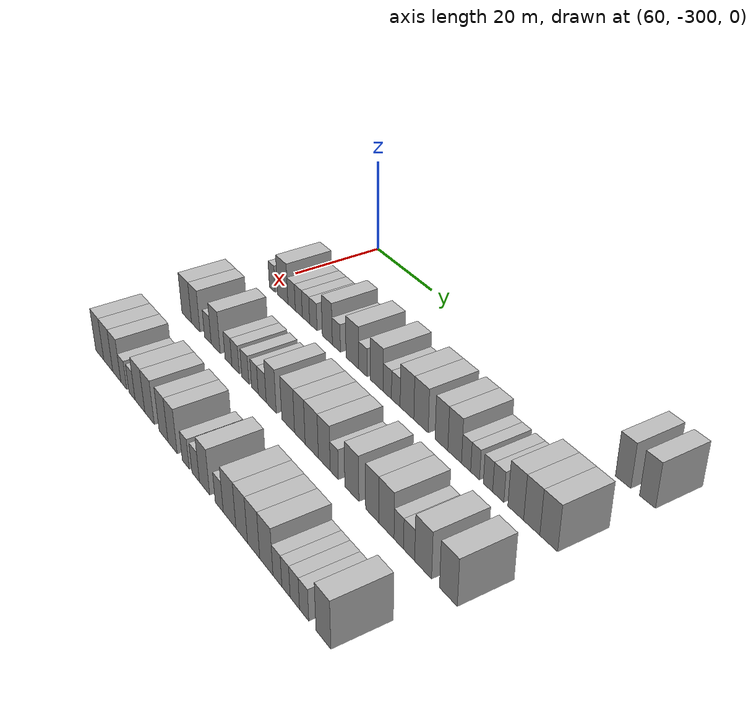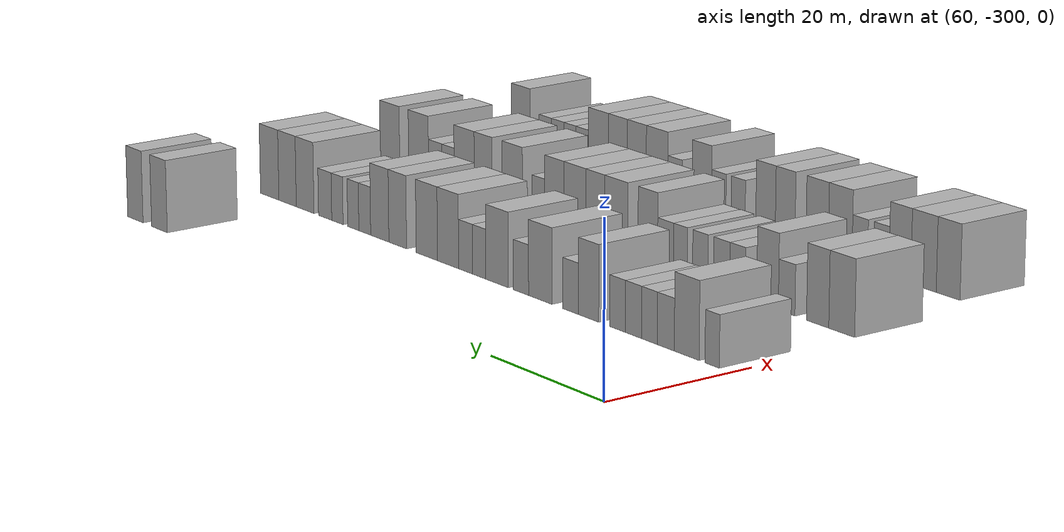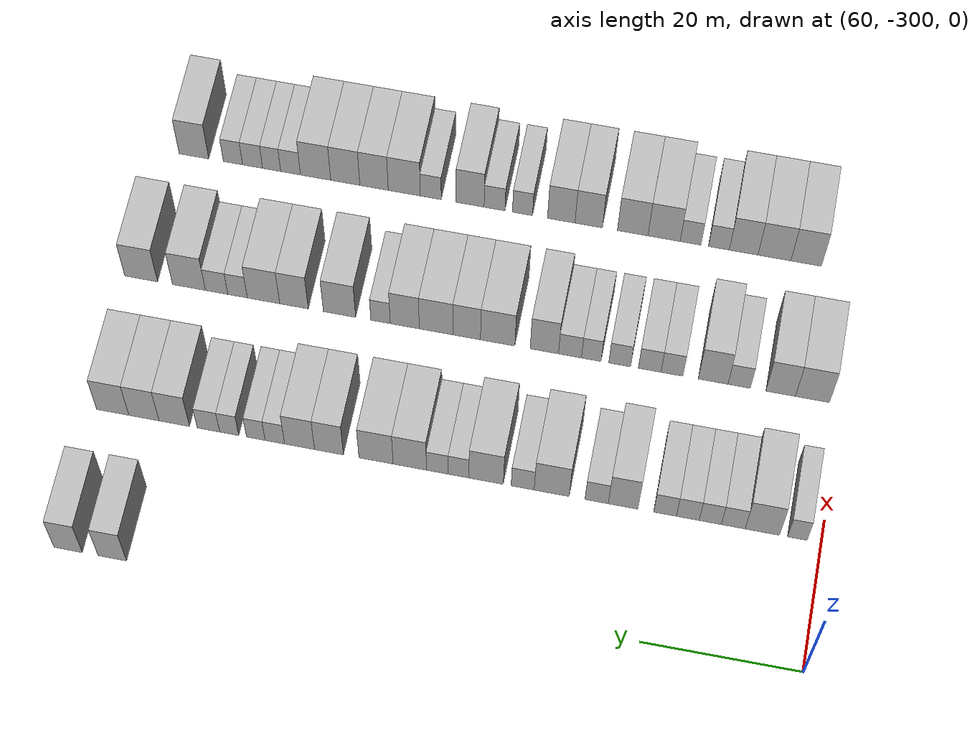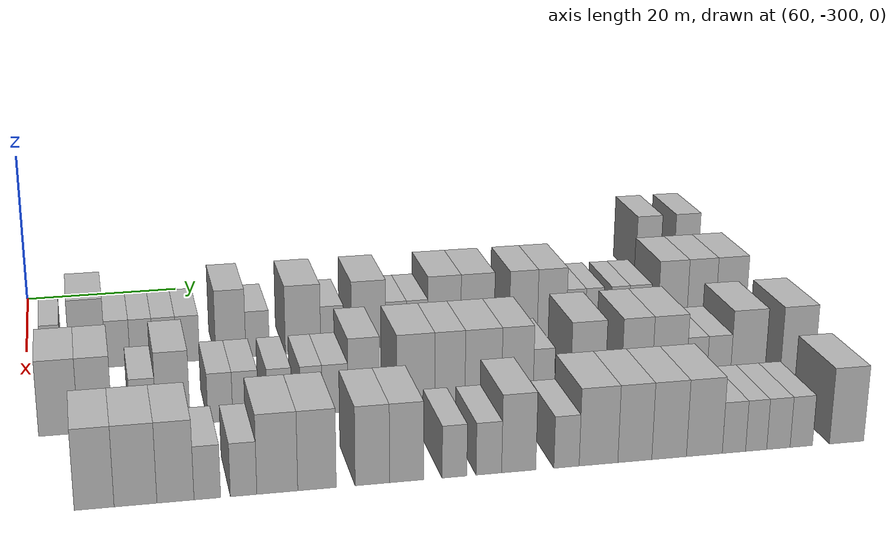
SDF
<sdf version="1.6">
 <world name="default">
  <model name="building_383">
   <static>1</static>
   <pose>63.0000 -214.2915 0 0.000000 0.000000 0.000000</pose>
   <link name="link">
    <pose>0 0 4.50 0 0 0</pose>
    <collision name="collision"><geometry><box><size>10.0000 3.6303 9.0000</size></box></geometry></collision>
    <visual name="visual">
     <cast_shadows>0</cast_shadows>
     <geometry><box><size>10.0000 3.6303 9.0000</size></box></geometry>
     <material>
      <script>
       <uri>model://HANNAS_wall/materials/scripts</uri>
       <uri>model://HANNAS_wall/materials/textures</uri>
       <name>vrc/HANNAS_wall</name>
      </script>
     </material>
    </visual>
   </link>
  </model>
  <model name="building_384">
   <static>1</static>
   <pose>63.0000 -208.6681 0 0.000000 0.000000 0.000000</pose>
   <link name="link">
    <pose>0 0 4.50 0 0 0</pose>
    <collision name="collision"><geometry><box><size>10.0000 3.6164 9.0000</size></box></geometry></collision>
    <visual name="visual">
     <cast_shadows>0</cast_shadows>
     <geometry><box><size>10.0000 3.6164 9.0000</size></box></geometry>
     <material>
      <script>
       <uri>model://HANNAS_wall/materials/scripts</uri>
       <uri>model://HANNAS_wall/materials/textures</uri>
       <name>vrc/HANNAS_wall</name>
      </script>
     </material>
    </visual>
   </link>
  </model>
  <model name="building_527">
   <static>1</static>
   <pose>82.0000 -296.9275 0 0.000000 0.000000 0.000000</pose>
   <link name="link">
    <pose>0 0 3.00 0 0 0</pose>
    <collision name="collision"><geometry><box><size>10.0000 2.4465 6.0000</size></box></geometry></collision>
    <visual name="visual">
     <cast_shadows>0</cast_shadows>
     <geometry><box><size>10.0000 2.4465 6.0000</size></box></geometry>
     <material>
      <script>
       <uri>model://HANNAS_wall/materials/scripts</uri>
       <uri>model://HANNAS_wall/materials/textures</uri>
       <name>vrc/HANNAS_wall</name>
      </script>
     </material>
    </visual>
   </link>
  </model>
  <model name="building_528">
   <static>1</static>
   <pose>82.0000 -292.5522 0 0.000000 0.000000 0.000000</pose>
   <link name="link">
    <pose>0 0 4.50 0 0 0</pose>
    <collision name="collision"><geometry><box><size>10.0000 4.3041 9.0000</size></box></geometry></collision>
    <visual name="visual">
     <cast_shadows>0</cast_shadows>
     <geometry><box><size>10.0000 4.3041 9.0000</size></box></geometry>
     <material>
      <script>
       <uri>model://HANNAS_wall/materials/scripts</uri>
       <uri>model://HANNAS_wall/materials/textures</uri>
       <name>vrc/HANNAS_wall</name>
      </script>
     </material>
    </visual>
   </link>
  </model>
  <model name="building_529">
   <static>1</static>
   <pose>82.0000 -288.9078 0 0.000000 0.000000 0.000000</pose>
   <link name="link">
    <pose>0 0 3.00 0 0 0</pose>
    <collision name="collision"><geometry><box><size>10.0000 2.9847 6.0000</size></box></geometry></collision>
    <visual name="visual">
     <cast_shadows>0</cast_shadows>
     <geometry><box><size>10.0000 2.9847 6.0000</size></box></geometry>
     <material>
      <script>
       <uri>model://HANNAS_wall/materials/scripts</uri>
       <uri>model://HANNAS_wall/materials/textures</uri>
       <name>vrc/HANNAS_wall</name>
      </script>
     </material>
    </visual>
   </link>
  </model>
  <model name="building_530">
   <static>1</static>
   <pose>82.0000 -286.0202 0 0.000000 0.000000 0.000000</pose>
   <link name="link">
    <pose>0 0 3.00 0 0 0</pose>
    <collision name="collision"><geometry><box><size>10.0000 2.7906 6.0000</size></box></geometry></collision>
    <visual name="visual">
     <cast_shadows>0</cast_shadows>
     <geometry><box><size>10.0000 2.7906 6.0000</size></box></geometry>
     <material>
      <script>
       <uri>model://HANNAS_wall/materials/scripts</uri>
       <uri>model://HANNAS_wall/materials/textures</uri>
       <name>vrc/HANNAS_wall</name>
      </script>
     </material>
    </visual>
   </link>
  </model>
  <model name="building_531">
   <static>1</static>
   <pose>82.0000 -283.1897 0 0.000000 0.000000 0.000000</pose>
   <link name="link">
    <pose>0 0 3.00 0 0 0</pose>
    <collision name="collision"><geometry><box><size>10.0000 2.8705 6.0000</size></box></geometry></collision>
    <visual name="visual">
     <cast_shadows>0</cast_shadows>
     <geometry><box><size>10.0000 2.8705 6.0000</size></box></geometry>
     <material>
      <script>
       <uri>model://HANNAS_wall/materials/scripts</uri>
       <uri>model://HANNAS_wall/materials/textures</uri>
       <name>vrc/HANNAS_wall</name>
      </script>
     </material>
    </visual>
   </link>
  </model>
  <model name="building_532">
   <static>1</static>
   <pose>82.0000 -280.3255 0 0.000000 0.000000 0.000000</pose>
   <link name="link">
    <pose>0 0 3.00 0 0 0</pose>
    <collision name="collision"><geometry><box><size>10.0000 2.8579 6.0000</size></box></geometry></collision>
    <visual name="visual">
     <cast_shadows>0</cast_shadows>
     <geometry><box><size>10.0000 2.8579 6.0000</size></box></geometry>
     <material>
      <script>
       <uri>model://HANNAS_wall/materials/scripts</uri>
       <uri>model://HANNAS_wall/materials/textures</uri>
       <name>vrc/HANNAS_wall</name>
      </script>
     </material>
    </visual>
   </link>
  </model>
  <model name="building_533">
   <static>1</static>
   <pose>82.0000 -275.0267 0 0.000000 0.000000 0.000000</pose>
   <link name="link">
    <pose>0 0 4.50 0 0 0</pose>
    <collision name="collision"><geometry><box><size>10.0000 3.7397 9.0000</size></box></geometry></collision>
    <visual name="visual">
     <cast_shadows>0</cast_shadows>
     <geometry><box><size>10.0000 3.7397 9.0000</size></box></geometry>
     <material>
      <script>
       <uri>model://HANNAS_wall/materials/scripts</uri>
       <uri>model://HANNAS_wall/materials/textures</uri>
       <name>vrc/HANNAS_wall</name>
      </script>
     </material>
    </visual>
   </link>
  </model>
  <model name="building_534">
   <static>1</static>
   <pose>82.0000 -271.6827 0 0.000000 0.000000 0.000000</pose>
   <link name="link">
    <pose>0 0 3.00 0 0 0</pose>
    <collision name="collision"><geometry><box><size>10.0000 2.9483 6.0000</size></box></geometry></collision>
    <visual name="visual">
     <cast_shadows>0</cast_shadows>
     <geometry><box><size>10.0000 2.9483 6.0000</size></box></geometry>
     <material>
      <script>
       <uri>model://HANNAS_wall/materials/scripts</uri>
       <uri>model://HANNAS_wall/materials/textures</uri>
       <name>vrc/HANNAS_wall</name>
      </script>
     </material>
    </visual>
   </link>
  </model>
  <model name="building_535">
   <static>1</static>
   <pose>82.0000 -265.9795 0 0.000000 0.000000 0.000000</pose>
   <link name="link">
    <pose>0 0 4.50 0 0 0</pose>
    <collision name="collision"><geometry><box><size>10.0000 4.4581 9.0000</size></box></geometry></collision>
    <visual name="visual">
     <cast_shadows>0</cast_shadows>
     <geometry><box><size>10.0000 4.4581 9.0000</size></box></geometry>
     <material>
      <script>
       <uri>model://HANNAS_wall/materials/scripts</uri>
       <uri>model://HANNAS_wall/materials/textures</uri>
       <name>vrc/HANNAS_wall</name>
      </script>
     </material>
    </visual>
   </link>
  </model>
  <model name="building_536">
   <static>1</static>
   <pose>82.0000 -262.2933 0 0.000000 0.000000 0.000000</pose>
   <link name="link">
    <pose>0 0 3.00 0 0 0</pose>
    <collision name="collision"><geometry><box><size>10.0000 2.9142 6.0000</size></box></geometry></collision>
    <visual name="visual">
     <cast_shadows>0</cast_shadows>
     <geometry><box><size>10.0000 2.9142 6.0000</size></box></geometry>
     <material>
      <script>
       <uri>model://HANNAS_wall/materials/scripts</uri>
       <uri>model://HANNAS_wall/materials/textures</uri>
       <name>vrc/HANNAS_wall</name>
      </script>
     </material>
    </visual>
   </link>
  </model>
  <model name="building_537">
   <static>1</static>
   <pose>82.0000 -257.6393 0 0.000000 0.000000 0.000000</pose>
   <link name="link">
    <pose>0 0 4.50 0 0 0</pose>
    <collision name="collision"><geometry><box><size>10.0000 4.3939 9.0000</size></box></geometry></collision>
    <visual name="visual">
     <cast_shadows>0</cast_shadows>
     <geometry><box><size>10.0000 4.3939 9.0000</size></box></geometry>
     <material>
      <script>
       <uri>model://HANNAS_wall/materials/scripts</uri>
       <uri>model://HANNAS_wall/materials/textures</uri>
       <name>vrc/HANNAS_wall</name>
      </script>
     </material>
    </visual>
   </link>
  </model>
  <model name="building_538">
   <static>1</static>
   <pose>82.0000 -254.1129 0 0.000000 0.000000 0.000000</pose>
   <link name="link">
    <pose>0 0 3.00 0 0 0</pose>
    <collision name="collision"><geometry><box><size>10.0000 2.6590 6.0000</size></box></geometry></collision>
    <visual name="visual">
     <cast_shadows>0</cast_shadows>
     <geometry><box><size>10.0000 2.6590 6.0000</size></box></geometry>
     <material>
      <script>
       <uri>model://HANNAS_wall/materials/scripts</uri>
       <uri>model://HANNAS_wall/materials/textures</uri>
       <name>vrc/HANNAS_wall</name>
      </script>
     </material>
    </visual>
   </link>
  </model>
  <model name="building_539">
   <static>1</static>
   <pose>82.0000 -251.4051 0 0.000000 0.000000 0.000000</pose>
   <link name="link">
    <pose>0 0 3.00 0 0 0</pose>
    <collision name="collision"><geometry><box><size>10.0000 2.7565 6.0000</size></box></geometry></collision>
    <visual name="visual">
     <cast_shadows>0</cast_shadows>
     <geometry><box><size>10.0000 2.7565 6.0000</size></box></geometry>
     <material>
      <script>
       <uri>model://HANNAS_wall/materials/scripts</uri>
       <uri>model://HANNAS_wall/materials/textures</uri>
       <name>vrc/HANNAS_wall</name>
      </script>
     </material>
    </visual>
   </link>
  </model>
  <model name="building_540">
   <static>1</static>
   <pose>82.0000 -247.8852 0 0.000000 0.000000 0.000000</pose>
   <link name="link">
    <pose>0 0 4.50 0 0 0</pose>
    <collision name="collision"><geometry><box><size>10.0000 4.2834 9.0000</size></box></geometry></collision>
    <visual name="visual">
     <cast_shadows>0</cast_shadows>
     <geometry><box><size>10.0000 4.2834 9.0000</size></box></geometry>
     <material>
      <script>
       <uri>model://HANNAS_wall/materials/scripts</uri>
       <uri>model://HANNAS_wall/materials/textures</uri>
       <name>vrc/HANNAS_wall</name>
      </script>
     </material>
    </visual>
   </link>
  </model>
  <model name="building_541">
   <static>1</static>
   <pose>82.0000 -243.5542 0 0.000000 0.000000 0.000000</pose>
   <link name="link">
    <pose>0 0 4.50 0 0 0</pose>
    <collision name="collision"><geometry><box><size>10.0000 4.3786 9.0000</size></box></geometry></collision>
    <visual name="visual">
     <cast_shadows>0</cast_shadows>
     <geometry><box><size>10.0000 4.3786 9.0000</size></box></geometry>
     <material>
      <script>
       <uri>model://HANNAS_wall/materials/scripts</uri>
       <uri>model://HANNAS_wall/materials/textures</uri>
       <name>vrc/HANNAS_wall</name>
      </script>
     </material>
    </visual>
   </link>
  </model>
  <model name="building_542">
   <static>1</static>
   <pose>82.0000 -237.5093 0 0.000000 0.000000 0.000000</pose>
   <link name="link">
    <pose>0 0 4.50 0 0 0</pose>
    <collision name="collision"><geometry><box><size>10.0000 3.7112 9.0000</size></box></geometry></collision>
    <visual name="visual">
     <cast_shadows>0</cast_shadows>
     <geometry><box><size>10.0000 3.7112 9.0000</size></box></geometry>
     <material>
      <script>
       <uri>model://HANNAS_wall/materials/scripts</uri>
       <uri>model://HANNAS_wall/materials/textures</uri>
       <name>vrc/HANNAS_wall</name>
      </script>
     </material>
    </visual>
   </link>
  </model>
  <model name="building_543">
   <static>1</static>
   <pose>82.0000 -233.7210 0 0.000000 0.000000 0.000000</pose>
   <link name="link">
    <pose>0 0 4.50 0 0 0</pose>
    <collision name="collision"><geometry><box><size>10.0000 3.8654 9.0000</size></box></geometry></collision>
    <visual name="visual">
     <cast_shadows>0</cast_shadows>
     <geometry><box><size>10.0000 3.8654 9.0000</size></box></geometry>
     <material>
      <script>
       <uri>model://HANNAS_wall/materials/scripts</uri>
       <uri>model://HANNAS_wall/materials/textures</uri>
       <name>vrc/HANNAS_wall</name>
      </script>
     </material>
    </visual>
   </link>
  </model>
  <model name="building_544">
   <static>1</static>
   <pose>82.0000 -230.5209 0 0.000000 0.000000 0.000000</pose>
   <link name="link">
    <pose>0 0 3.00 0 0 0</pose>
    <collision name="collision"><geometry><box><size>10.0000 2.5349 6.0000</size></box></geometry></collision>
    <visual name="visual">
     <cast_shadows>0</cast_shadows>
     <geometry><box><size>10.0000 2.5349 6.0000</size></box></geometry>
     <material>
      <script>
       <uri>model://HANNAS_wall/materials/scripts</uri>
       <uri>model://HANNAS_wall/materials/textures</uri>
       <name>vrc/HANNAS_wall</name>
      </script>
     </material>
    </visual>
   </link>
  </model>
  <model name="building_545">
   <static>1</static>
   <pose>82.0000 -228.0471 0 0.000000 0.000000 0.000000</pose>
   <link name="link">
    <pose>0 0 3.00 0 0 0</pose>
    <collision name="collision"><geometry><box><size>10.0000 2.4128 6.0000</size></box></geometry></collision>
    <visual name="visual">
     <cast_shadows>0</cast_shadows>
     <geometry><box><size>10.0000 2.4128 6.0000</size></box></geometry>
     <material>
      <script>
       <uri>model://HANNAS_wall/materials/scripts</uri>
       <uri>model://HANNAS_wall/materials/textures</uri>
       <name>vrc/HANNAS_wall</name>
      </script>
     </material>
    </visual>
   </link>
  </model>
  <model name="building_546">
   <static>1</static>
   <pose>82.0000 -224.6015 0 0.000000 0.000000 0.000000</pose>
   <link name="link">
    <pose>0 0 3.00 0 0 0</pose>
    <collision name="collision"><geometry><box><size>10.0000 2.4784 6.0000</size></box></geometry></collision>
    <visual name="visual">
     <cast_shadows>0</cast_shadows>
     <geometry><box><size>10.0000 2.4784 6.0000</size></box></geometry>
     <material>
      <script>
       <uri>model://HANNAS_wall/materials/scripts</uri>
       <uri>model://HANNAS_wall/materials/textures</uri>
       <name>vrc/HANNAS_wall</name>
      </script>
     </material>
    </visual>
   </link>
  </model>
  <model name="building_547">
   <static>1</static>
   <pose>82.0000 -221.9022 0 0.000000 0.000000 0.000000</pose>
   <link name="link">
    <pose>0 0 3.00 0 0 0</pose>
    <collision name="collision"><geometry><box><size>10.0000 2.9203 6.0000</size></box></geometry></collision>
    <visual name="visual">
     <cast_shadows>0</cast_shadows>
     <geometry><box><size>10.0000 2.9203 6.0000</size></box></geometry>
     <material>
      <script>
       <uri>model://HANNAS_wall/materials/scripts</uri>
       <uri>model://HANNAS_wall/materials/textures</uri>
       <name>vrc/HANNAS_wall</name>
      </script>
     </material>
    </visual>
   </link>
  </model>
  <model name="building_548">
   <static>1</static>
   <pose>82.0000 -217.4598 0 0.000000 0.000000 0.000000</pose>
   <link name="link">
    <pose>0 0 4.50 0 0 0</pose>
    <collision name="collision"><geometry><box><size>10.0000 3.9645 9.0000</size></box></geometry></collision>
    <visual name="visual">
     <cast_shadows>0</cast_shadows>
     <geometry><box><size>10.0000 3.9645 9.0000</size></box></geometry>
     <material>
      <script>
       <uri>model://HANNAS_wall/materials/scripts</uri>
       <uri>model://HANNAS_wall/materials/textures</uri>
       <name>vrc/HANNAS_wall</name>
      </script>
     </material>
    </visual>
   </link>
  </model>
  <model name="building_549">
   <static>1</static>
   <pose>82.0000 -213.5065 0 0.000000 0.000000 0.000000</pose>
   <link name="link">
    <pose>0 0 4.50 0 0 0</pose>
    <collision name="collision"><geometry><box><size>10.0000 3.9420 9.0000</size></box></geometry></collision>
    <visual name="visual">
     <cast_shadows>0</cast_shadows>
     <geometry><box><size>10.0000 3.9420 9.0000</size></box></geometry>
     <material>
      <script>
       <uri>model://HANNAS_wall/materials/scripts</uri>
       <uri>model://HANNAS_wall/materials/textures</uri>
       <name>vrc/HANNAS_wall</name>
      </script>
     </material>
    </visual>
   </link>
  </model>
  <model name="building_550">
   <static>1</static>
   <pose>82.0000 -209.4273 0 0.000000 0.000000 0.000000</pose>
   <link name="link">
    <pose>0 0 4.50 0 0 0</pose>
    <collision name="collision"><geometry><box><size>10.0000 4.2164 9.0000</size></box></geometry></collision>
    <visual name="visual">
     <cast_shadows>0</cast_shadows>
     <geometry><box><size>10.0000 4.2164 9.0000</size></box></geometry>
     <material>
      <script>
       <uri>model://HANNAS_wall/materials/scripts</uri>
       <uri>model://HANNAS_wall/materials/textures</uri>
       <name>vrc/HANNAS_wall</name>
      </script>
     </material>
    </visual>
   </link>
  </model>
  <model name="building_702">
   <static>1</static>
   <pose>101.0000 -296.2451 0 0.000000 0.000000 0.000000</pose>
   <link name="link">
    <pose>0 0 4.50 0 0 0</pose>
    <collision name="collision"><geometry><box><size>10.0000 4.3623 9.0000</size></box></geometry></collision>
    <visual name="visual">
     <cast_shadows>0</cast_shadows>
     <geometry><box><size>10.0000 4.3623 9.0000</size></box></geometry>
     <material>
      <script>
       <uri>model://HANNAS_wall/materials/scripts</uri>
       <uri>model://HANNAS_wall/materials/textures</uri>
       <name>vrc/HANNAS_wall</name>
      </script>
     </material>
    </visual>
   </link>
  </model>
  <model name="building_703">
   <static>1</static>
   <pose>101.0000 -292.1672 0 0.000000 0.000000 0.000000</pose>
   <link name="link">
    <pose>0 0 4.50 0 0 0</pose>
    <collision name="collision"><geometry><box><size>10.0000 3.7935 9.0000</size></box></geometry></collision>
    <visual name="visual">
     <cast_shadows>0</cast_shadows>
     <geometry><box><size>10.0000 3.7935 9.0000</size></box></geometry>
     <material>
      <script>
       <uri>model://HANNAS_wall/materials/scripts</uri>
       <uri>model://HANNAS_wall/materials/textures</uri>
       <name>vrc/HANNAS_wall</name>
      </script>
     </material>
    </visual>
   </link>
  </model>
  <model name="building_704">
   <static>1</static>
   <pose>101.0000 -286.8284 0 0.000000 0.000000 0.000000</pose>
   <link name="link">
    <pose>0 0 3.00 0 0 0</pose>
    <collision name="collision"><geometry><box><size>10.0000 2.8841 6.0000</size></box></geometry></collision>
    <visual name="visual">
     <cast_shadows>0</cast_shadows>
     <geometry><box><size>10.0000 2.8841 6.0000</size></box></geometry>
     <material>
      <script>
       <uri>model://HANNAS_wall/materials/scripts</uri>
       <uri>model://HANNAS_wall/materials/textures</uri>
       <name>vrc/HANNAS_wall</name>
      </script>
     </material>
    </visual>
   </link>
  </model>
  <model name="building_705">
   <static>1</static>
   <pose>101.0000 -283.4772 0 0.000000 0.000000 0.000000</pose>
   <link name="link">
    <pose>0 0 4.50 0 0 0</pose>
    <collision name="collision"><geometry><box><size>10.0000 3.8182 9.0000</size></box></geometry></collision>
    <visual name="visual">
     <cast_shadows>0</cast_shadows>
     <geometry><box><size>10.0000 3.8182 9.0000</size></box></geometry>
     <material>
      <script>
       <uri>model://HANNAS_wall/materials/scripts</uri>
       <uri>model://HANNAS_wall/materials/textures</uri>
       <name>vrc/HANNAS_wall</name>
      </script>
     </material>
    </visual>
   </link>
  </model>
  <model name="building_706">
   <static>1</static>
   <pose>101.0000 -278.1553 0 0.000000 0.000000 0.000000</pose>
   <link name="link">
    <pose>0 0 3.00 0 0 0</pose>
    <collision name="collision"><geometry><box><size>10.0000 2.8255 6.0000</size></box></geometry></collision>
    <visual name="visual">
     <cast_shadows>0</cast_shadows>
     <geometry><box><size>10.0000 2.8255 6.0000</size></box></geometry>
     <material>
      <script>
       <uri>model://HANNAS_wall/materials/scripts</uri>
       <uri>model://HANNAS_wall/materials/textures</uri>
       <name>vrc/HANNAS_wall</name>
      </script>
     </material>
    </visual>
   </link>
  </model>
  <model name="building_707">
   <static>1</static>
   <pose>101.0000 -275.2720 0 0.000000 0.000000 0.000000</pose>
   <link name="link">
    <pose>0 0 3.00 0 0 0</pose>
    <collision name="collision"><geometry><box><size>10.0000 2.9411 6.0000</size></box></geometry></collision>
    <visual name="visual">
     <cast_shadows>0</cast_shadows>
     <geometry><box><size>10.0000 2.9411 6.0000</size></box></geometry>
     <material>
      <script>
       <uri>model://HANNAS_wall/materials/scripts</uri>
       <uri>model://HANNAS_wall/materials/textures</uri>
       <name>vrc/HANNAS_wall</name>
      </script>
     </material>
    </visual>
   </link>
  </model>
  <model name="building_708">
   <static>1</static>
   <pose>101.0000 -271.3883 0 0.000000 0.000000 0.000000</pose>
   <link name="link">
    <pose>0 0 3.00 0 0 0</pose>
    <collision name="collision"><geometry><box><size>10.0000 2.8262 6.0000</size></box></geometry></collision>
    <visual name="visual">
     <cast_shadows>0</cast_shadows>
     <geometry><box><size>10.0000 2.8262 6.0000</size></box></geometry>
     <material>
      <script>
       <uri>model://HANNAS_wall/materials/scripts</uri>
       <uri>model://HANNAS_wall/materials/textures</uri>
       <name>vrc/HANNAS_wall</name>
      </script>
     </material>
    </visual>
   </link>
  </model>
  <model name="building_709">
   <static>1</static>
   <pose>101.0000 -267.7005 0 0.000000 0.000000 0.000000</pose>
   <link name="link">
    <pose>0 0 3.00 0 0 0</pose>
    <collision name="collision"><geometry><box><size>10.0000 2.5494 6.0000</size></box></geometry></collision>
    <visual name="visual">
     <cast_shadows>0</cast_shadows>
     <geometry><box><size>10.0000 2.5494 6.0000</size></box></geometry>
     <material>
      <script>
       <uri>model://HANNAS_wall/materials/scripts</uri>
       <uri>model://HANNAS_wall/materials/textures</uri>
       <name>vrc/HANNAS_wall</name>
      </script>
     </material>
    </visual>
   </link>
  </model>
  <model name="building_710">
   <static>1</static>
   <pose>101.0000 -264.9304 0 0.000000 0.000000 0.000000</pose>
   <link name="link">
    <pose>0 0 3.00 0 0 0</pose>
    <collision name="collision"><geometry><box><size>10.0000 2.9907 6.0000</size></box></geometry></collision>
    <visual name="visual">
     <cast_shadows>0</cast_shadows>
     <geometry><box><size>10.0000 2.9907 6.0000</size></box></geometry>
     <material>
      <script>
       <uri>model://HANNAS_wall/materials/scripts</uri>
       <uri>model://HANNAS_wall/materials/textures</uri>
       <name>vrc/HANNAS_wall</name>
      </script>
     </material>
    </visual>
   </link>
  </model>
  <model name="building_711">
   <static>1</static>
   <pose>101.0000 -261.5892 0 0.000000 0.000000 0.000000</pose>
   <link name="link">
    <pose>0 0 4.50 0 0 0</pose>
    <collision name="collision"><geometry><box><size>10.0000 3.6918 9.0000</size></box></geometry></collision>
    <visual name="visual">
     <cast_shadows>0</cast_shadows>
     <geometry><box><size>10.0000 3.6918 9.0000</size></box></geometry>
     <material>
      <script>
       <uri>model://HANNAS_wall/materials/scripts</uri>
       <uri>model://HANNAS_wall/materials/textures</uri>
       <name>vrc/HANNAS_wall</name>
      </script>
     </material>
    </visual>
   </link>
  </model>
  <model name="building_712">
   <static>1</static>
   <pose>101.0000 -255.4940 0 0.000000 0.000000 0.000000</pose>
   <link name="link">
    <pose>0 0 4.50 0 0 0</pose>
    <collision name="collision"><geometry><box><size>10.0000 4.4985 9.0000</size></box></geometry></collision>
    <visual name="visual">
     <cast_shadows>0</cast_shadows>
     <geometry><box><size>10.0000 4.4985 9.0000</size></box></geometry>
     <material>
      <script>
       <uri>model://HANNAS_wall/materials/scripts</uri>
       <uri>model://HANNAS_wall/materials/textures</uri>
       <name>vrc/HANNAS_wall</name>
      </script>
     </material>
    </visual>
   </link>
  </model>
  <model name="building_713">
   <static>1</static>
   <pose>101.0000 -251.4379 0 0.000000 0.000000 0.000000</pose>
   <link name="link">
    <pose>0 0 4.50 0 0 0</pose>
    <collision name="collision"><geometry><box><size>10.0000 3.6137 9.0000</size></box></geometry></collision>
    <visual name="visual">
     <cast_shadows>0</cast_shadows>
     <geometry><box><size>10.0000 3.6137 9.0000</size></box></geometry>
     <material>
      <script>
       <uri>model://HANNAS_wall/materials/scripts</uri>
       <uri>model://HANNAS_wall/materials/textures</uri>
       <name>vrc/HANNAS_wall</name>
      </script>
     </material>
    </visual>
   </link>
  </model>
  <model name="building_714">
   <static>1</static>
   <pose>101.0000 -247.4268 0 0.000000 0.000000 0.000000</pose>
   <link name="link">
    <pose>0 0 4.50 0 0 0</pose>
    <collision name="collision"><geometry><box><size>10.0000 4.4084 9.0000</size></box></geometry></collision>
    <visual name="visual">
     <cast_shadows>0</cast_shadows>
     <geometry><box><size>10.0000 4.4084 9.0000</size></box></geometry>
     <material>
      <script>
       <uri>model://HANNAS_wall/materials/scripts</uri>
       <uri>model://HANNAS_wall/materials/textures</uri>
       <name>vrc/HANNAS_wall</name>
      </script>
     </material>
    </visual>
   </link>
  </model>
  <model name="building_715">
   <static>1</static>
   <pose>101.0000 -243.3110 0 0.000000 0.000000 0.000000</pose>
   <link name="link">
    <pose>0 0 4.50 0 0 0</pose>
    <collision name="collision"><geometry><box><size>10.0000 3.8232 9.0000</size></box></geometry></collision>
    <visual name="visual">
     <cast_shadows>0</cast_shadows>
     <geometry><box><size>10.0000 3.8232 9.0000</size></box></geometry>
     <material>
      <script>
       <uri>model://HANNAS_wall/materials/scripts</uri>
       <uri>model://HANNAS_wall/materials/textures</uri>
       <name>vrc/HANNAS_wall</name>
      </script>
     </material>
    </visual>
   </link>
  </model>
  <model name="building_716">
   <static>1</static>
   <pose>101.0000 -240.1203 0 0.000000 0.000000 0.000000</pose>
   <link name="link">
    <pose>0 0 3.00 0 0 0</pose>
    <collision name="collision"><geometry><box><size>10.0000 2.5581 6.0000</size></box></geometry></collision>
    <visual name="visual">
     <cast_shadows>0</cast_shadows>
     <geometry><box><size>10.0000 2.5581 6.0000</size></box></geometry>
     <material>
      <script>
       <uri>model://HANNAS_wall/materials/scripts</uri>
       <uri>model://HANNAS_wall/materials/textures</uri>
       <name>vrc/HANNAS_wall</name>
      </script>
     </material>
    </visual>
   </link>
  </model>
  <model name="building_717">
   <static>1</static>
   <pose>101.0000 -234.7105 0 0.000000 0.000000 0.000000</pose>
   <link name="link">
    <pose>0 0 4.50 0 0 0</pose>
    <collision name="collision"><geometry><box><size>10.0000 4.2616 9.0000</size></box></geometry></collision>
    <visual name="visual">
     <cast_shadows>0</cast_shadows>
     <geometry><box><size>10.0000 4.2616 9.0000</size></box></geometry>
     <material>
      <script>
       <uri>model://HANNAS_wall/materials/scripts</uri>
       <uri>model://HANNAS_wall/materials/textures</uri>
       <name>vrc/HANNAS_wall</name>
      </script>
     </material>
    </visual>
   </link>
  </model>
  <model name="building_718">
   <static>1</static>
   <pose>101.0000 -228.6816 0 0.000000 0.000000 0.000000</pose>
   <link name="link">
    <pose>0 0 4.50 0 0 0</pose>
    <collision name="collision"><geometry><box><size>10.0000 3.7963 9.0000</size></box></geometry></collision>
    <visual name="visual">
     <cast_shadows>0</cast_shadows>
     <geometry><box><size>10.0000 3.7963 9.0000</size></box></geometry>
     <material>
      <script>
       <uri>model://HANNAS_wall/materials/scripts</uri>
       <uri>model://HANNAS_wall/materials/textures</uri>
       <name>vrc/HANNAS_wall</name>
      </script>
     </material>
    </visual>
   </link>
  </model>
  <model name="building_719">
   <static>1</static>
   <pose>101.0000 -224.6340 0 0.000000 0.000000 0.000000</pose>
   <link name="link">
    <pose>0 0 4.50 0 0 0</pose>
    <collision name="collision"><geometry><box><size>10.0000 4.2988 9.0000</size></box></geometry></collision>
    <visual name="visual">
     <cast_shadows>0</cast_shadows>
     <geometry><box><size>10.0000 4.2988 9.0000</size></box></geometry>
     <material>
      <script>
       <uri>model://HANNAS_wall/materials/scripts</uri>
       <uri>model://HANNAS_wall/materials/textures</uri>
       <name>vrc/HANNAS_wall</name>
      </script>
     </material>
    </visual>
   </link>
  </model>
  <model name="building_720">
   <static>1</static>
   <pose>101.0000 -221.1847 0 0.000000 0.000000 0.000000</pose>
   <link name="link">
    <pose>0 0 3.00 0 0 0</pose>
    <collision name="collision"><geometry><box><size>10.0000 2.5998 6.0000</size></box></geometry></collision>
    <visual name="visual">
     <cast_shadows>0</cast_shadows>
     <geometry><box><size>10.0000 2.5998 6.0000</size></box></geometry>
     <material>
      <script>
       <uri>model://HANNAS_wall/materials/scripts</uri>
       <uri>model://HANNAS_wall/materials/textures</uri>
       <name>vrc/HANNAS_wall</name>
      </script>
     </material>
    </visual>
   </link>
  </model>
  <model name="building_721">
   <static>1</static>
   <pose>101.0000 -218.3953 0 0.000000 0.000000 0.000000</pose>
   <link name="link">
    <pose>0 0 3.00 0 0 0</pose>
    <collision name="collision"><geometry><box><size>10.0000 2.9790 6.0000</size></box></geometry></collision>
    <visual name="visual">
     <cast_shadows>0</cast_shadows>
     <geometry><box><size>10.0000 2.9790 6.0000</size></box></geometry>
     <material>
      <script>
       <uri>model://HANNAS_wall/materials/scripts</uri>
       <uri>model://HANNAS_wall/materials/textures</uri>
       <name>vrc/HANNAS_wall</name>
      </script>
     </material>
    </visual>
   </link>
  </model>
  <model name="building_722">
   <static>1</static>
   <pose>101.0000 -214.7090 0 0.000000 0.000000 0.000000</pose>
   <link name="link">
    <pose>0 0 4.50 0 0 0</pose>
    <collision name="collision"><geometry><box><size>10.0000 4.3937 9.0000</size></box></geometry></collision>
    <visual name="visual">
     <cast_shadows>0</cast_shadows>
     <geometry><box><size>10.0000 4.3937 9.0000</size></box></geometry>
     <material>
      <script>
       <uri>model://HANNAS_wall/materials/scripts</uri>
       <uri>model://HANNAS_wall/materials/textures</uri>
       <name>vrc/HANNAS_wall</name>
      </script>
     </material>
    </visual>
   </link>
  </model>
  <model name="building_723">
   <static>1</static>
   <pose>101.0000 -208.3147 0 0.000000 0.000000 0.000000</pose>
   <link name="link">
    <pose>0 0 4.50 0 0 0</pose>
    <collision name="collision"><geometry><box><size>10.0000 4.3951 9.0000</size></box></geometry></collision>
    <visual name="visual">
     <cast_shadows>0</cast_shadows>
     <geometry><box><size>10.0000 4.3951 9.0000</size></box></geometry>
     <material>
      <script>
       <uri>model://HANNAS_wall/materials/scripts</uri>
       <uri>model://HANNAS_wall/materials/textures</uri>
       <name>vrc/HANNAS_wall</name>
      </script>
     </material>
    </visual>
   </link>
  </model>
  <model name="building_881">
   <static>1</static>
   <pose>120.0000 -292.8397 0 0.000000 0.000000 0.000000</pose>
   <link name="link">
    <pose>0 0 4.50 0 0 0</pose>
    <collision name="collision"><geometry><box><size>10.0000 4.0131 9.0000</size></box></geometry></collision>
    <visual name="visual">
     <cast_shadows>0</cast_shadows>
     <geometry><box><size>10.0000 4.0131 9.0000</size></box></geometry>
     <material>
      <script>
       <uri>model://HANNAS_wall/materials/scripts</uri>
       <uri>model://HANNAS_wall/materials/textures</uri>
       <name>vrc/HANNAS_wall</name>
      </script>
     </material>
    </visual>
   </link>
  </model>
  <model name="building_882">
   <static>1</static>
   <pose>120.0000 -288.6605 0 0.000000 0.000000 0.000000</pose>
   <link name="link">
    <pose>0 0 4.50 0 0 0</pose>
    <collision name="collision"><geometry><box><size>10.0000 4.3454 9.0000</size></box></geometry></collision>
    <visual name="visual">
     <cast_shadows>0</cast_shadows>
     <geometry><box><size>10.0000 4.3454 9.0000</size></box></geometry>
     <material>
      <script>
       <uri>model://HANNAS_wall/materials/scripts</uri>
       <uri>model://HANNAS_wall/materials/textures</uri>
       <name>vrc/HANNAS_wall</name>
      </script>
     </material>
    </visual>
   </link>
  </model>
  <model name="building_883">
   <static>1</static>
   <pose>120.0000 -284.5930 0 0.000000 0.000000 0.000000</pose>
   <link name="link">
    <pose>0 0 4.50 0 0 0</pose>
    <collision name="collision"><geometry><box><size>10.0000 3.7897 9.0000</size></box></geometry></collision>
    <visual name="visual">
     <cast_shadows>0</cast_shadows>
     <geometry><box><size>10.0000 3.7897 9.0000</size></box></geometry>
     <material>
      <script>
       <uri>model://HANNAS_wall/materials/scripts</uri>
       <uri>model://HANNAS_wall/materials/textures</uri>
       <name>vrc/HANNAS_wall</name>
      </script>
     </material>
    </visual>
   </link>
  </model>
  <model name="building_884">
   <static>1</static>
   <pose>120.0000 -281.3265 0 0.000000 0.000000 0.000000</pose>
   <link name="link">
    <pose>0 0 3.00 0 0 0</pose>
    <collision name="collision"><geometry><box><size>10.0000 2.7432 6.0000</size></box></geometry></collision>
    <visual name="visual">
     <cast_shadows>0</cast_shadows>
     <geometry><box><size>10.0000 2.7432 6.0000</size></box></geometry>
     <material>
      <script>
       <uri>model://HANNAS_wall/materials/scripts</uri>
       <uri>model://HANNAS_wall/materials/textures</uri>
       <name>vrc/HANNAS_wall</name>
      </script>
     </material>
    </visual>
   </link>
  </model>
  <model name="building_885">
   <static>1</static>
   <pose>120.0000 -277.5798 0 0.000000 0.000000 0.000000</pose>
   <link name="link">
    <pose>0 0 3.00 0 0 0</pose>
    <collision name="collision"><geometry><box><size>10.0000 2.7501 6.0000</size></box></geometry></collision>
    <visual name="visual">
     <cast_shadows>0</cast_shadows>
     <geometry><box><size>10.0000 2.7501 6.0000</size></box></geometry>
     <material>
      <script>
       <uri>model://HANNAS_wall/materials/scripts</uri>
       <uri>model://HANNAS_wall/materials/textures</uri>
       <name>vrc/HANNAS_wall</name>
      </script>
     </material>
    </visual>
   </link>
  </model>
  <model name="building_886">
   <static>1</static>
   <pose>120.0000 -274.0688 0 0.000000 0.000000 0.000000</pose>
   <link name="link">
    <pose>0 0 4.50 0 0 0</pose>
    <collision name="collision"><geometry><box><size>10.0000 4.2720 9.0000</size></box></geometry></collision>
    <visual name="visual">
     <cast_shadows>0</cast_shadows>
     <geometry><box><size>10.0000 4.2720 9.0000</size></box></geometry>
     <material>
      <script>
       <uri>model://HANNAS_wall/materials/scripts</uri>
       <uri>model://HANNAS_wall/materials/textures</uri>
       <name>vrc/HANNAS_wall</name>
      </script>
     </material>
    </visual>
   </link>
  </model>
  <model name="building_887">
   <static>1</static>
   <pose>120.0000 -269.9055 0 0.000000 0.000000 0.000000</pose>
   <link name="link">
    <pose>0 0 4.50 0 0 0</pose>
    <collision name="collision"><geometry><box><size>10.0000 4.0545 9.0000</size></box></geometry></collision>
    <visual name="visual">
     <cast_shadows>0</cast_shadows>
     <geometry><box><size>10.0000 4.0545 9.0000</size></box></geometry>
     <material>
      <script>
       <uri>model://HANNAS_wall/materials/scripts</uri>
       <uri>model://HANNAS_wall/materials/textures</uri>
       <name>vrc/HANNAS_wall</name>
      </script>
     </material>
    </visual>
   </link>
  </model>
  <model name="building_888">
   <static>1</static>
   <pose>120.0000 -264.0492 0 0.000000 0.000000 0.000000</pose>
   <link name="link">
    <pose>0 0 4.50 0 0 0</pose>
    <collision name="collision"><geometry><box><size>10.0000 3.6582 9.0000</size></box></geometry></collision>
    <visual name="visual">
     <cast_shadows>0</cast_shadows>
     <geometry><box><size>10.0000 3.6582 9.0000</size></box></geometry>
     <material>
      <script>
       <uri>model://HANNAS_wall/materials/scripts</uri>
       <uri>model://HANNAS_wall/materials/textures</uri>
       <name>vrc/HANNAS_wall</name>
      </script>
     </material>
    </visual>
   </link>
  </model>
  <model name="building_889">
   <static>1</static>
   <pose>120.0000 -260.3845 0 0.000000 0.000000 0.000000</pose>
   <link name="link">
    <pose>0 0 4.50 0 0 0</pose>
    <collision name="collision"><geometry><box><size>10.0000 3.6712 9.0000</size></box></geometry></collision>
    <visual name="visual">
     <cast_shadows>0</cast_shadows>
     <geometry><box><size>10.0000 3.6712 9.0000</size></box></geometry>
     <material>
      <script>
       <uri>model://HANNAS_wall/materials/scripts</uri>
       <uri>model://HANNAS_wall/materials/textures</uri>
       <name>vrc/HANNAS_wall</name>
      </script>
     </material>
    </visual>
   </link>
  </model>
  <model name="building_890">
   <static>1</static>
   <pose>120.0000 -255.2046 0 0.000000 0.000000 0.000000</pose>
   <link name="link">
    <pose>0 0 3.00 0 0 0</pose>
    <collision name="collision"><geometry><box><size>10.0000 2.6885 6.0000</size></box></geometry></collision>
    <visual name="visual">
     <cast_shadows>0</cast_shadows>
     <geometry><box><size>10.0000 2.6885 6.0000</size></box></geometry>
     <material>
      <script>
       <uri>model://HANNAS_wall/materials/scripts</uri>
       <uri>model://HANNAS_wall/materials/textures</uri>
       <name>vrc/HANNAS_wall</name>
      </script>
     </material>
    </visual>
   </link>
  </model>
  <model name="building_891">
   <static>1</static>
   <pose>120.0000 -251.4607 0 0.000000 0.000000 0.000000</pose>
   <link name="link">
    <pose>0 0 3.00 0 0 0</pose>
    <collision name="collision"><geometry><box><size>10.0000 2.7993 6.0000</size></box></geometry></collision>
    <visual name="visual">
     <cast_shadows>0</cast_shadows>
     <geometry><box><size>10.0000 2.7993 6.0000</size></box></geometry>
     <material>
      <script>
       <uri>model://HANNAS_wall/materials/scripts</uri>
       <uri>model://HANNAS_wall/materials/textures</uri>
       <name>vrc/HANNAS_wall</name>
      </script>
     </material>
    </visual>
   </link>
  </model>
  <model name="building_892">
   <static>1</static>
   <pose>120.0000 -248.1786 0 0.000000 0.000000 0.000000</pose>
   <link name="link">
    <pose>0 0 4.50 0 0 0</pose>
    <collision name="collision"><geometry><box><size>10.0000 3.7649 9.0000</size></box></geometry></collision>
    <visual name="visual">
     <cast_shadows>0</cast_shadows>
     <geometry><box><size>10.0000 3.7649 9.0000</size></box></geometry>
     <material>
      <script>
       <uri>model://HANNAS_wall/materials/scripts</uri>
       <uri>model://HANNAS_wall/materials/textures</uri>
       <name>vrc/HANNAS_wall</name>
      </script>
     </material>
    </visual>
   </link>
  </model>
  <model name="building_893">
   <static>1</static>
   <pose>120.0000 -242.8888 0 0.000000 0.000000 0.000000</pose>
   <link name="link">
    <pose>0 0 3.00 0 0 0</pose>
    <collision name="collision"><geometry><box><size>10.0000 2.8147 6.0000</size></box></geometry></collision>
    <visual name="visual">
     <cast_shadows>0</cast_shadows>
     <geometry><box><size>10.0000 2.8147 6.0000</size></box></geometry>
     <material>
      <script>
       <uri>model://HANNAS_wall/materials/scripts</uri>
       <uri>model://HANNAS_wall/materials/textures</uri>
       <name>vrc/HANNAS_wall</name>
      </script>
     </material>
    </visual>
   </link>
  </model>
  <model name="building_894">
   <static>1</static>
   <pose>120.0000 -239.3130 0 0.000000 0.000000 0.000000</pose>
   <link name="link">
    <pose>0 0 4.50 0 0 0</pose>
    <collision name="collision"><geometry><box><size>10.0000 4.3369 9.0000</size></box></geometry></collision>
    <visual name="visual">
     <cast_shadows>0</cast_shadows>
     <geometry><box><size>10.0000 4.3369 9.0000</size></box></geometry>
     <material>
      <script>
       <uri>model://HANNAS_wall/materials/scripts</uri>
       <uri>model://HANNAS_wall/materials/textures</uri>
       <name>vrc/HANNAS_wall</name>
      </script>
     </material>
    </visual>
   </link>
  </model>
  <model name="building_895">
   <static>1</static>
   <pose>120.0000 -235.2256 0 0.000000 0.000000 0.000000</pose>
   <link name="link">
    <pose>0 0 4.50 0 0 0</pose>
    <collision name="collision"><geometry><box><size>10.0000 3.8378 9.0000</size></box></geometry></collision>
    <visual name="visual">
     <cast_shadows>0</cast_shadows>
     <geometry><box><size>10.0000 3.8378 9.0000</size></box></geometry>
     <material>
      <script>
       <uri>model://HANNAS_wall/materials/scripts</uri>
       <uri>model://HANNAS_wall/materials/textures</uri>
       <name>vrc/HANNAS_wall</name>
      </script>
     </material>
    </visual>
   </link>
  </model>
  <model name="building_896">
   <static>1</static>
   <pose>120.0000 -231.3330 0 0.000000 0.000000 0.000000</pose>
   <link name="link">
    <pose>0 0 4.50 0 0 0</pose>
    <collision name="collision"><geometry><box><size>10.0000 3.9473 9.0000</size></box></geometry></collision>
    <visual name="visual">
     <cast_shadows>0</cast_shadows>
     <geometry><box><size>10.0000 3.9473 9.0000</size></box></geometry>
     <material>
      <script>
       <uri>model://HANNAS_wall/materials/scripts</uri>
       <uri>model://HANNAS_wall/materials/textures</uri>
       <name>vrc/HANNAS_wall</name>
      </script>
     </material>
    </visual>
   </link>
  </model>
  <model name="building_897">
   <static>1</static>
   <pose>120.0000 -227.3040 0 0.000000 0.000000 0.000000</pose>
   <link name="link">
    <pose>0 0 4.50 0 0 0</pose>
    <collision name="collision"><geometry><box><size>10.0000 4.1107 9.0000</size></box></geometry></collision>
    <visual name="visual">
     <cast_shadows>0</cast_shadows>
     <geometry><box><size>10.0000 4.1107 9.0000</size></box></geometry>
     <material>
      <script>
       <uri>model://HANNAS_wall/materials/scripts</uri>
       <uri>model://HANNAS_wall/materials/textures</uri>
       <name>vrc/HANNAS_wall</name>
      </script>
     </material>
    </visual>
   </link>
  </model>
  <model name="building_898">
   <static>1</static>
   <pose>120.0000 -223.9040 0 0.000000 0.000000 0.000000</pose>
   <link name="link">
    <pose>0 0 3.00 0 0 0</pose>
    <collision name="collision"><geometry><box><size>10.0000 2.6892 6.0000</size></box></geometry></collision>
    <visual name="visual">
     <cast_shadows>0</cast_shadows>
     <geometry><box><size>10.0000 2.6892 6.0000</size></box></geometry>
     <material>
      <script>
       <uri>model://HANNAS_wall/materials/scripts</uri>
       <uri>model://HANNAS_wall/materials/textures</uri>
       <name>vrc/HANNAS_wall</name>
      </script>
     </material>
    </visual>
   </link>
  </model>
  <model name="building_899">
   <static>1</static>
   <pose>120.0000 -221.3286 0 0.000000 0.000000 0.000000</pose>
   <link name="link">
    <pose>0 0 3.00 0 0 0</pose>
    <collision name="collision"><geometry><box><size>10.0000 2.4617 6.0000</size></box></geometry></collision>
    <visual name="visual">
     <cast_shadows>0</cast_shadows>
     <geometry><box><size>10.0000 2.4617 6.0000</size></box></geometry>
     <material>
      <script>
       <uri>model://HANNAS_wall/materials/scripts</uri>
       <uri>model://HANNAS_wall/materials/textures</uri>
       <name>vrc/HANNAS_wall</name>
      </script>
     </material>
    </visual>
   </link>
  </model>
  <model name="building_900">
   <static>1</static>
   <pose>120.0000 -218.7346 0 0.000000 0.000000 0.000000</pose>
   <link name="link">
    <pose>0 0 3.00 0 0 0</pose>
    <collision name="collision"><geometry><box><size>10.0000 2.7263 6.0000</size></box></geometry></collision>
    <visual name="visual">
     <cast_shadows>0</cast_shadows>
     <geometry><box><size>10.0000 2.7263 6.0000</size></box></geometry>
     <material>
      <script>
       <uri>model://HANNAS_wall/materials/scripts</uri>
       <uri>model://HANNAS_wall/materials/textures</uri>
       <name>vrc/HANNAS_wall</name>
      </script>
     </material>
    </visual>
   </link>
  </model>
  <model name="building_901">
   <static>1</static>
   <pose>120.0000 -216.0612 0 0.000000 0.000000 0.000000</pose>
   <link name="link">
    <pose>0 0 3.00 0 0 0</pose>
    <collision name="collision"><geometry><box><size>10.0000 2.6206 6.0000</size></box></geometry></collision>
    <visual name="visual">
     <cast_shadows>0</cast_shadows>
     <geometry><box><size>10.0000 2.6206 6.0000</size></box></geometry>
     <material>
      <script>
       <uri>model://HANNAS_wall/materials/scripts</uri>
       <uri>model://HANNAS_wall/materials/textures</uri>
       <name>vrc/HANNAS_wall</name>
      </script>
     </material>
    </visual>
   </link>
  </model>
  <model name="building_902">
   <static>1</static>
   <pose>120.0000 -210.7236 0 0.000000 0.000000 0.000000</pose>
   <link name="link">
    <pose>0 0 4.50 0 0 0</pose>
    <collision name="collision"><geometry><box><size>10.0000 4.0546 9.0000</size></box></geometry></collision>
    <visual name="visual">
     <cast_shadows>0</cast_shadows>
     <geometry><box><size>10.0000 4.0546 9.0000</size></box></geometry>
     <material>
      <script>
       <uri>model://HANNAS_wall/materials/scripts</uri>
       <uri>model://HANNAS_wall/materials/textures</uri>
       <name>vrc/HANNAS_wall</name>
      </script>
     </material>
    </visual>
   </link>
  </model>
 </world>
</sdf>
